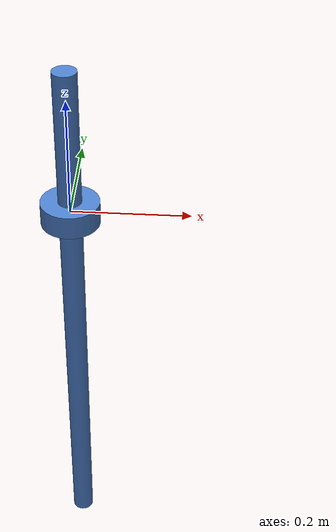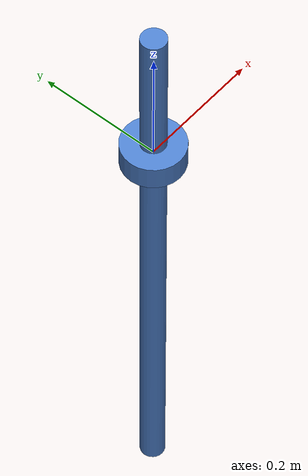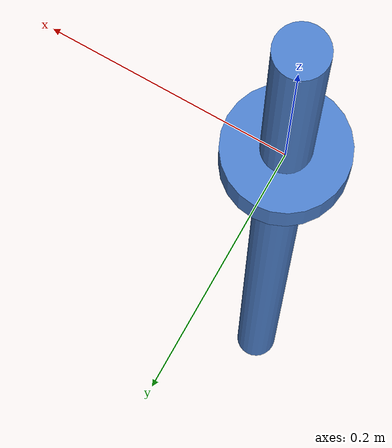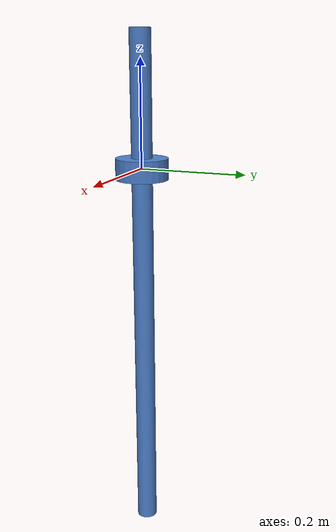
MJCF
<!--
  单关节摆锤模型 — 用于动力学参数辨识
  可辨识参数: 连杆质量、关节阻尼、关节摩擦、电枢惯量
-->
<mujoco model="pendulum">
  <compiler angle="radian" />

  <option timestep="0.001" integrator="RK4">
    <flag gravity="enable" contact="disable" />
  </option>

  <default>
    <geom rgba="0.3 0.5 0.8 1" />
    <joint limited="false" />
  </default>

  <worldbody>
    <!-- 基座 (固定) -->
    <body name="base" pos="0 0 0">
      <geom name="base_geom" type="cylinder" size="0.05 0.02" mass="0" />
    </body>

    <!-- 摆锤连杆 -->
    <body name="link" pos="0 0 0">
      <joint name="hinge" type="hinge" axis="0 1 0"
             damping="0.1" frictionloss="0.05" armature="0.01" />
      <geom name="link_geom" type="cylinder" size="0.02 0.5" pos="0 0 -0.25"
            mass="1.0" />
    </body>
  </worldbody>

  <actuator>
    <motor name="motor" joint="hinge" ctrlrange="-100 100" />
  </actuator>

  <sensor>
    <jointpos name="q"  joint="hinge" />
    <jointvel name="qd" joint="hinge" />
    <actuatorfrc name="tau" actuator="motor" />
  </sensor>
</mujoco>
